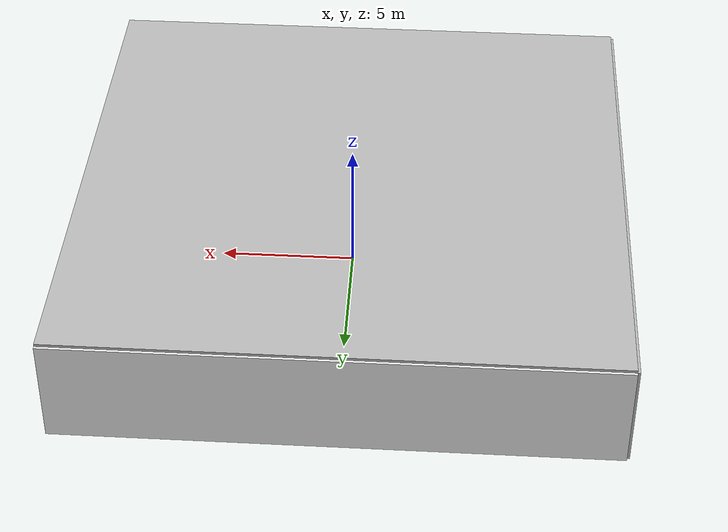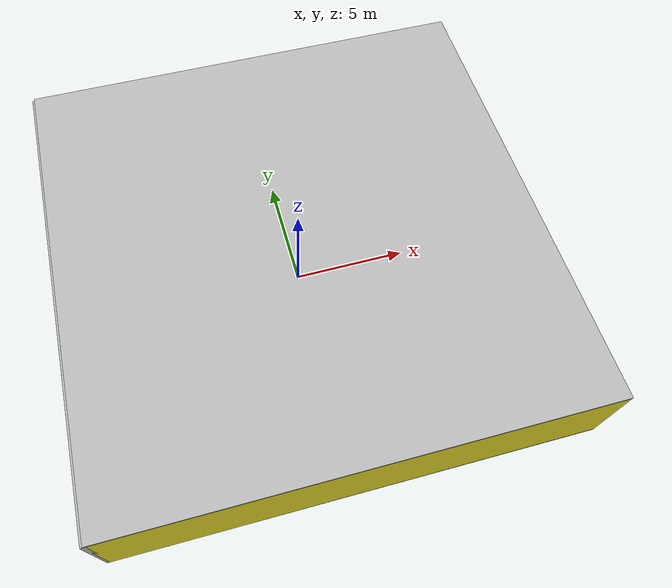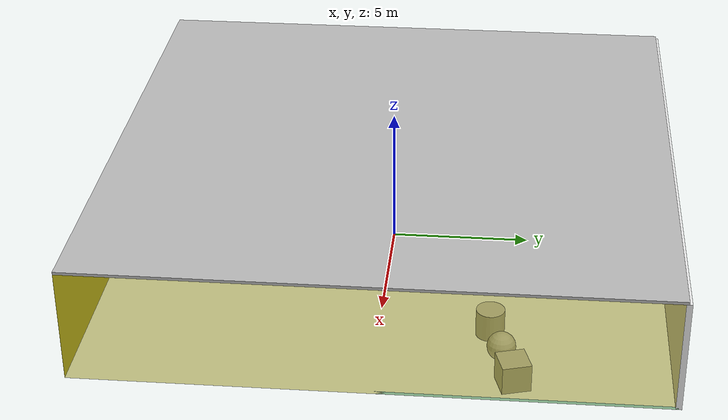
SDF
<sdf version="1.4">
 <world name="default">
  <physics type="ode">
   <max_step_size>0.001</max_step_size>
   <real_time_factor>1</real_time_factor>
   <real_time_update_rate>1000</real_time_update_rate>
   <gravity>0 0 -9.8</gravity>
  </physics>
  <scene><ambient>0.4 0.4 0.4 1</ambient><background>0.7 0.7 0.7 1</background><shadows>1</shadows></scene>
  <model name="Surrounding">
   <static>1</static>
   <link name="Ceiling">
    <collision name="Ceiling_Collision"><geometry><box><size>20 20 0.1</size></box></geometry></collision>
    <visual name="Ceiling_Visual">
     <geometry><box><size>20 20 0.1</size></box></geometry>
     <material>
      <script><uri>file://media/materials/scripts/gazebo.material</uri><name>Gazebo/PioneerBody</name></script>
     </material>
    </visual>
    <pose>0 0 4.05 0 0 0</pose>
   </link>
   <link name="Wall_South">
    <collision name="Wall_South_Collision">
     <geometry><box><size>20 0 4</size></box></geometry>
     <pose>0 0 2 0 -0 0</pose>
    </collision>
    <visual name="Wall_South_Visual">
     <pose>0 0 2 0 -0 0</pose>
     <geometry><box><size>20 0 4</size></box></geometry>
     <material>
      <script><uri>file://media/materials/scripts/gazebo.material</uri><name>Gazebo/Yellow</name></script>
     </material>
    </visual>
    <velocity_decay><linear>0</linear><angular>0</angular></velocity_decay>
    <pose>0 -10 0 0 -0 0</pose>
   </link>
   <link name="Wall_East">
    <collision name="Wall_21_Collision">
     <geometry><box><size>20 0 4</size></box></geometry>
     <pose>0 0 2 0 -0 0</pose>
    </collision>
    <visual name="Wall_21_Visual">
     <pose>0 0 2 0 -0 0</pose>
     <geometry><box><size>20 0 4</size></box></geometry>
     <material>
      <script>
       <uri>file://media/materials/scripts/gazebo.material</uri>
       <name>Gazebo/YellowTransparent</name>
      </script>
     </material>
    </visual>
    <velocity_decay><linear>0</linear><angular>0</angular></velocity_decay>
    <pose>10 0 0 0 -0 1.5708</pose>
   </link>
   <link name="Wall_North">
    <collision name="Wall_22_Collision">
     <geometry><box><size>20 0.2 4</size></box></geometry>
     <pose>0 0 2 0 -0 0</pose>
    </collision>
    <visual name="Wall_22_Visual">
     <pose>0 0 2 0 -0 0</pose>
     <geometry><box><size>20 0.2 4</size></box></geometry>
     <material>
      <script><uri>file://media/materials/scripts/gazebo.material</uri><name>Gazebo/WhiteGlow</name></script>
     </material>
    </visual>
    <velocity_decay><linear>0</linear><angular>0</angular></velocity_decay>
    <pose>0 10 0 0 -0 0</pose>
   </link>
   <link name="Wall_West">
    <collision name="Wall_23_Collision">
     <geometry><box><size>20 0.2 4</size></box></geometry>
     <pose>0 0 2 0 -0 0</pose>
    </collision>
    <visual name="Wall_23_Visual">
     <pose>0 0 2 0 -0 0</pose>
     <geometry><box><size>20 0.2 4</size></box></geometry>
     <material>
      <script><uri>file://media/materials/scripts/gazebo.material</uri><name>Gazebo/Pioneer2Body</name></script>
     </material>
    </visual>
    <velocity_decay><linear>0</linear><angular>0</angular></velocity_decay>
    <pose>-10 0 0 0 0 -1.5708</pose>
   </link>
   <link name="Ground_link">
    <collision name="collision">
     <pose>0 0 .05 0 -0 0</pose>
     <geometry><box><size>20 20 0.1</size></box></geometry>
    </collision>
    <visual name="visual">
     <pose>0 0 .05 0 -0 0</pose>
     <geometry><box><size>20 20 0.1</size></box></geometry>
     <material>
      <script><uri>file://media/materials/scripts/gazebo.material</uri><name>Gazebo/GreenTransparent</name></script>
     </material>
    </visual>
   </link>
   <static>1</static>
  </model>
  <spherical_coordinates>
   <surface_model>EARTH_WGS84</surface_model>
   <latitude_deg>0</latitude_deg>
   <longitude_deg>0</longitude_deg>
   <elevation>0</elevation>
   <heading_deg>0</heading_deg>
  </spherical_coordinates>
  <light name="lightball_0" type="diffuse">
   <diffuse>0.8 0.8 0.8 1</diffuse>
   <specular>0.2 0.2 0.2 1</specular>
   <attenuation>
    <range>100</range>
    <constant>0.7</constant>
    <linear>0.01</linear>
    <quadratic>0.001</quadratic>
   </attenuation>
   <direction>-0.5 0.1 -0.9</direction>
   <pose>-3.64839081964 -1.11069009436 1.60201041013 0 0 0</pose>
  </light>
  <light name="lightball_1" type="diffuse">
   <diffuse>0.8 0.8 0.8 1</diffuse>
   <specular>0.2 0.2 0.2 1</specular>
   <attenuation>
    <range>100</range>
    <constant>0.7</constant>
    <linear>0.01</linear>
    <quadratic>0.001</quadratic>
   </attenuation>
   <direction>-0.5 0.1 -0.9</direction>
   <pose>4.7549733471 2.05702701334 2.45813655723 0 0 0</pose>
  </light>
  <light name="lightball_2" type="diffuse">
   <diffuse>0.8 0.8 0.8 1</diffuse>
   <specular>0.2 0.2 0.2 1</specular>
   <attenuation>
    <range>100</range>
    <constant>0.7</constant>
    <linear>0.01</linear>
    <quadratic>0.001</quadratic>
   </attenuation>
   <direction>-0.5 0.1 -0.9</direction>
   <pose>7.19353525786 3.37176669719 1.53668600519 0 0 0</pose>
  </light>
  <light name="lightball_3" type="diffuse">
   <diffuse>0.8 0.8 0.8 1</diffuse>
   <specular>0.2 0.2 0.2 1</specular>
   <attenuation>
    <range>100</range>
    <constant>0.7</constant>
    <linear>0.01</linear>
    <quadratic>0.001</quadratic>
   </attenuation>
   <direction>-0.5 0.1 -0.9</direction>
   <pose>-9.95820447326 -9.49397639625 2.24417025277 0 0 0</pose>
  </light>
  <light name="lightball_4" type="diffuse">
   <diffuse>0.8 0.8 0.8 1</diffuse>
   <specular>0.2 0.2 0.2 1</specular>
   <attenuation>
    <range>100</range>
    <constant>0.7</constant>
    <linear>0.01</linear>
    <quadratic>0.001</quadratic>
   </attenuation>
   <direction>-0.5 0.1 -0.9</direction>
   <pose>-2.30081844017 8.6356260243 2.13695447136 0 0 0</pose>
  </light>
  <light name="lightball_5" type="diffuse">
   <diffuse>0.8 0.8 0.8 1</diffuse>
   <specular>0.2 0.2 0.2 1</specular>
   <attenuation>
    <range>100</range>
    <constant>0.7</constant>
    <linear>0.01</linear>
    <quadratic>0.001</quadratic>
   </attenuation>
   <direction>-0.5 0.1 -0.9</direction>
   <pose>-8.96345986418 -1.34699779098 2.98836470988 0 0 0</pose>
  </light>
  <light name="lightball_6" type="diffuse">
   <diffuse>0.8 0.8 0.8 1</diffuse>
   <specular>0.2 0.2 0.2 1</specular>
   <attenuation>
    <range>100</range>
    <constant>0.7</constant>
    <linear>0.01</linear>
    <quadratic>0.001</quadratic>
   </attenuation>
   <direction>-0.5 0.1 -0.9</direction>
   <pose>-0.176841519388 7.69932505534 1.62184181663 0 0 0</pose>
  </light>
  <light name="lightball_7" type="diffuse">
   <diffuse>0.8 0.8 0.8 1</diffuse>
   <specular>0.2 0.2 0.2 1</specular>
   <attenuation>
    <range>100</range>
    <constant>0.7</constant>
    <linear>0.01</linear>
    <quadratic>0.001</quadratic>
   </attenuation>
   <direction>-0.5 0.1 -0.9</direction>
   <pose>4.7649763443 2.50354277004 1.22643420837 0 0 0</pose>
  </light>
  <light name="lightball_8" type="diffuse">
   <diffuse>0.8 0.8 0.8 1</diffuse>
   <specular>0.2 0.2 0.2 1</specular>
   <attenuation>
    <range>100</range>
    <constant>0.7</constant>
    <linear>0.01</linear>
    <quadratic>0.001</quadratic>
   </attenuation>
   <direction>-0.5 0.1 -0.9</direction>
   <pose>4.46272656698 5.72822735987 2.25495445933 0 0 0</pose>
  </light>
  <light name="lightball_9" type="diffuse">
   <diffuse>0.8 0.8 0.8 1</diffuse>
   <specular>0.2 0.2 0.2 1</specular>
   <attenuation>
    <range>100</range>
    <constant>0.7</constant>
    <linear>0.01</linear>
    <quadratic>0.001</quadratic>
   </attenuation>
   <direction>-0.5 0.1 -0.9</direction>
   <pose>-0.16371849921 -3.52352115682 2.0235207646 0 0 0</pose>
  </light>
  <light name="lightball_10" type="diffuse">
   <diffuse>0.8 0.8 0.8 1</diffuse>
   <specular>0.2 0.2 0.2 1</specular>
   <attenuation>
    <range>100</range>
    <constant>0.7</constant>
    <linear>0.01</linear>
    <quadratic>0.001</quadratic>
   </attenuation>
   <direction>-0.5 0.1 -0.9</direction>
   <pose>-4.42086426883 -6.25741804177 3.35145160961 0 0 0</pose>
  </light>
  <light name="lightball_11" type="diffuse">
   <diffuse>0.8 0.8 0.8 1</diffuse>
   <specular>0.2 0.2 0.2 1</specular>
   <attenuation>
    <range>100</range>
    <constant>0.7</constant>
    <linear>0.01</linear>
    <quadratic>0.001</quadratic>
   </attenuation>
   <direction>-0.5 0.1 -0.9</direction>
   <pose>8.23087503067 2.50887200027 2.49830537682 0 0 0</pose>
  </light>
  <light name="lightball_12" type="diffuse">
   <diffuse>0.8 0.8 0.8 1</diffuse>
   <specular>0.2 0.2 0.2 1</specular>
   <attenuation>
    <range>100</range>
    <constant>0.7</constant>
    <linear>0.01</linear>
    <quadratic>0.001</quadratic>
   </attenuation>
   <direction>-0.5 0.1 -0.9</direction>
   <pose>3.31036939963 -5.53128946258 2.82502775888 0 0 0</pose>
  </light>
  <light name="lightball_13" type="diffuse">
   <diffuse>0.8 0.8 0.8 1</diffuse>
   <specular>0.2 0.2 0.2 1</specular>
   <attenuation>
    <range>100</range>
    <constant>0.7</constant>
    <linear>0.01</linear>
    <quadratic>0.001</quadratic>
   </attenuation>
   <direction>-0.5 0.1 -0.9</direction>
   <pose>-1.67599626501 -3.32503315843 0.887817991413 0 0 0</pose>
  </light>
  <include><uri>model://table</uri><pose>-7.70880783728 -5.22840733185 0 0 0 2.14799702643</pose></include>
  <include><uri>model://cabinet</uri><pose>-8.18315844554 7.73159853351 0 0 0 0.337358071186</pose></include>
  <include><uri>model://cabinet</uri><pose>-4.00677552864 -6.87689294056 0 0 0 0.784279438685</pose></include>
  <include>
   <uri>model://robocup_3Dsim_goal</uri>
   <pose>-4.68254892102 8.17464995725 0 0 0 2.86636765037</pose>
  </include>
  <include><uri>model://table</uri><pose>-1.72591326876 -5.14222237036 0 0 0 2.32289787138</pose></include>
  <include><uri>model://cabinet</uri><pose>-1.15364359454 7.26584802847 0 0 0 0.0971540398562</pose></include>
  <include>
   <uri>model://robocup_3Dsim_goal</uri>
   <pose>2.22614057008 7.10784105876 0 0 0 0.351400691191</pose>
  </include>
  <include>
   <uri>model://textured_shapes</uri>
   <pose>6.95015405364 4.24755560593 0 0 0 1.8585872369</pose>
  </include>
 </world>
</sdf>

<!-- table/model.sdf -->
<sdf version="1.5">
  <model name="table">
    <static>true</static>
    <link name="link">
      <collision name="surface">
        <pose>0 0 1.0 0 0 0</pose>
        <geometry>
          <box>
            <size>1.5 0.8 0.03</size>
          </box>
        </geometry>
        <surface>
          <friction>
            <ode>
              <mu>0.6</mu>
              <mu2>0.6</mu2>
            </ode>
          </friction>
        </surface>
      </collision>
      <visual name="visual1">
        <pose>0 0 1.0 0 0 0</pose>
        <geometry>
          <box>
            <size>1.5 0.8 0.03</size>
          </box>
        </geometry>
        <material>
          <script>
            <uri>model://media/materials/scripts/gazebo.material</uri>
            <name>Gazebo/Wood</name>
          </script>
        </material>
      </visual>
      <collision name="front_left_leg">
        <pose>0.68 0.38 0.5 0 0 0</pose>
        <geometry>
          <cylinder>
            <radius>0.02</radius>
            <length>1.0</length>
          </cylinder>
        </geometry>
      </collision>
      <visual name="front_left_leg">
        <pose>0.68 0.38 0.5 0 0 0</pose>
        <geometry>
          <cylinder>
            <radius>0.02</radius>
            <length>1.0</length>
          </cylinder>
        </geometry>
        <material>
          <script>
            <uri>model://media/materials/scripts/gazebo.material</uri>
            <name>Gazebo/Grey</name>
          </script>
        </material>
      </visual>
      <collision name="front_right_leg">
        <pose>0.68 -0.38 0.5 0 0 0</pose>
        <geometry>
          <cylinder>
            <radius>0.02</radius>
            <length>1.0</length>
          </cylinder>
        </geometry>
      </collision>
      <visual name="front_right_leg">
        <pose>0.68 -0.38 0.5 0 0 0</pose>
        <geometry>
          <cylinder>
            <radius>0.02</radius>
            <length>1.0</length>
          </cylinder>
        </geometry>
        <material>
          <script>
            <uri>model://media/materials/scripts/gazebo.material</uri>
            <name>Gazebo/Grey</name>
          </script>
        </material>
      </visual>
      <collision name="back_right_leg">
        <pose>-0.68 -0.38 0.5 0 0 0</pose>
        <geometry>
          <cylinder>
            <radius>0.02</radius>
            <length>1.0</length>
          </cylinder>
        </geometry>
      </collision>
      <visual name="back_right_leg">
        <pose>-0.68 -0.38 0.5 0 0 0</pose>
        <geometry>
          <cylinder>
            <radius>0.02</radius>
            <length>1.0</length>
          </cylinder>
        </geometry>
        <material>
          <script>
            <uri>model://media/materials/scripts/gazebo.material</uri>
            <name>Gazebo/Grey</name>
          </script>
        </material>
      </visual>
      <collision name="back_left_leg">
        <pose>-0.68 0.38 0.5 0 0 0</pose>
        <geometry>
          <cylinder>
            <radius>0.02</radius>
            <length>1.0</length>
          </cylinder>
        </geometry>
      </collision>
      <visual name="back_left_leg">
        <pose>-0.68 0.38 0.5 0 0 0</pose>
        <geometry>
          <cylinder>
            <radius>0.02</radius>
            <length>1.0</length>
          </cylinder>
        </geometry>
        <material>
          <script>
            <uri>model://media/materials/scripts/gazebo.material</uri>
            <name>Gazebo/Grey</name>
          </script>
        </material>
      </visual>
    </link>
  </model>
</sdf>

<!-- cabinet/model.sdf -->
<sdf version="1.5">
  <model name="cabinet">
    <static>true</static>
    <link name="cabinet_bottom_plate">
      <inertial>
        <pose>0 0 -1 0 0 0</pose>
        <inertia>
          <ixx>2.050000</ixx>
          <ixy>0</ixy>
          <ixz>0</ixz>
          <iyy>2.050000</iyy>
          <iyz>0</iyz>
          <izz>2.050000</izz>
        </inertia>
        <mass>25.000000</mass>
      </inertial>
      <collision name="cabinet_bottom_plate_geom">
        <pose>0 0 0.010000 0 0 0</pose>
        <geometry>
          <box>
            <size>0.450000 0.450000 0.020000</size>
          </box>
        </geometry>
      </collision>
      <visual name="cabinet_bottom_plate_geom_visual">
        <pose>0 0 0.010000 0 0 0</pose>
        <geometry>
          <box>
            <size>0.450000 0.450000 0.020000</size>
          </box>
        </geometry>
        <material>
          <script>
            <uri>model://media/materials/scripts/gazebo.material</uri>
            <name>Gazebo/Wood</name>
          </script>
        </material>
      </visual>
      <collision name="cabinet_bottom_plate_geom_cabinet_back_plate">
        <pose>0.235000 0 0.510000 0 0 0</pose>
        <geometry>
          <box>
            <size>0.020000 0.450000 1.020000</size>
          </box>
        </geometry>
      </collision>
      <visual name="cabinet_bottom_plate_geom_cabinet_back_plate_visual">
        <pose>0.235000 0 0.510000 0 0 0</pose>
        <geometry>
          <box>
            <size>0.020000 0.450000 1.020000</size>
          </box>
        </geometry>
        <material>
          <script>
            <uri>model://media/materials/scripts/gazebo.material</uri>
            <name>Gazebo/Wood</name>
          </script>
        </material>
      </visual>
      <collision name="cabinet_bottom_plate_geom_cabinet_left_plate">
        <pose>0 0.235000 0.510000 0 0 0</pose>
        <geometry>
          <box>
            <size>0.450000 0.020000 1.020000</size>
          </box>
        </geometry>
      </collision>
      <visual name="cabinet_bottom_plate_geom_cabinet_left_plate_visual">
        <pose>0 0.235000 0.510000 0 0 0</pose>
        <geometry>
          <box>
            <size>0.450000 0.020000 1.020000</size>
          </box>
        </geometry>
        <material>
          <script>
            <uri>model://media/materials/scripts/gazebo.material</uri>
            <name>Gazebo/Wood</name>
          </script>
        </material>
      </visual>
      <collision name="cabinet_bottom_plate_geom_cabinet_middle_plate">
        <pose>0 0 0.510000 0 0 0</pose>
        <geometry>
          <box>
            <size>0.450000 0.450000 0.020000</size>
          </box>
        </geometry>
      </collision>
      <visual name="cabinet_bottom_plate_geom_cabinet_middle_plate_visual">
        <pose>0 0 0.510000 0 0 0</pose>
        <geometry>
          <box>
            <size>0.450000 0.450000 0.020000</size>
          </box>
        </geometry>
        <material>
          <script>
            <uri>model://media/materials/scripts/gazebo.material</uri>
            <name>Gazebo/Wood</name>
          </script>
        </material>
      </visual>
      <collision name="cabinet_bottom_plate_geom_cabinet_right_plate">
        <pose>0 -0.235000 0.510000 0 0 0</pose>
        <geometry>
          <box>
            <size>0.450000 0.020000 1.020000</size>
          </box>
        </geometry>
      </collision>
      <visual name="cabinet_bottom_plate_geom_cabinet_right_plate_visual">
        <pose>0 -0.235000 0.510000 0 0 0</pose>
        <geometry>
          <box>
            <size>0.450000 0.020000 1.020000</size>
          </box>
        </geometry>
        <material>
          <script>
            <uri>model://media/materials/scripts/gazebo.material</uri>
            <name>Gazebo/Wood</name>
          </script>
        </material>
      </visual>
      <collision name="cabinet_bottom_plate_geom_cabinet_top_plate">
        <pose>0 0 1.010000 0 0 0</pose>
        <geometry>
          <box>
            <size>0.450000 0.450000 0.020000</size>
          </box>
        </geometry>
      </collision>
      <visual name="cabinet_bottom_plate_geom_cabinet_top_plate_visual">
        <pose>0 0 1.010000 0 0 0</pose>
        <geometry>
          <box>
            <size>0.450000 0.450000 0.020000</size>
          </box>
        </geometry>
        <material>
          <script>
            <uri>model://media/materials/scripts/gazebo.material</uri>
            <name>Gazebo/Wood</name>
          </script>
        </material>
      </visual>
    </link>
  </model>
</sdf>

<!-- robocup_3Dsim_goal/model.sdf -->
<sdf version="1.5">
  <model name="robocup_3d_goal">
    <static>true</static>
    <link name="left_post">
      <pose>0 1.05 0.45 0 0 0</pose>
      <collision name="collision">
        <geometry>
          <cylinder>
            <radius>0.05</radius>
            <length>0.9</length>
          </cylinder>
        </geometry>
      </collision>
      <visual name="visual">
        <geometry>
          <cylinder>
            <radius>0.05</radius>
            <length>0.9</length>
          </cylinder>
        </geometry>
        <material>
          <script>
            <uri>file://media/materials/scripts/gazebo.material</uri>
            <name>Gazebo/ZincYellow</name>
          </script>
        </material>
      </visual>
    </link>
    <link name="left_support_horiz_lower">
      <pose>0.30 1.05 0.01 0 0 0</pose>
      <collision name="collision">
        <geometry>
          <box>
            <size>0.50 0.02 0.02</size>
          </box>
        </geometry>
      </collision>
      <visual name="visual">
        <geometry>
          <box>
            <size>0.50 0.02 0.02</size>
          </box>
        </geometry>
        <material>
          <script>
            <uri>file://media/materials/scripts/gazebo.material</uri>
            <name>Gazebo/White</name>
          </script>
        </material>
      </visual>
    </link>
    <link name="left_support_horiz_upper">
      <pose>0.30 1.05 0.79 0 0 0</pose>
      <collision name="collision">
        <geometry>
          <box>
            <size>0.50 0.02 0.02</size>
          </box>
        </geometry>
      </collision>
      <visual name="visual">
        <geometry>
          <box>
            <size>0.50 0.02 0.02</size>
          </box>
        </geometry>
        <material>
          <script>
            <uri>file://media/materials/scripts/gazebo.material</uri>
            <name>Gazebo/White</name>
          </script>
        </material>
      </visual>
    </link>
    <link name="left_support_vertical">
      <pose>0.56 1.05 0.4 0 1.5708 0</pose>
      <collision name="collision">
        <geometry>
          <box>
            <size>0.80 0.02 0.02</size>
          </box>
        </geometry>
      </collision>
      <visual name="visual">
        <geometry>
          <box>
            <size>0.80 0.02 0.02</size>
          </box>
        </geometry>
        <material>
          <script>
            <uri>file://media/materials/scripts/gazebo.material</uri>
            <name>Gazebo/White</name>
          </script>
        </material>
      </visual>
    </link>
    <link name="right_support_horiz_lower">
      <pose>0.30 -1.05 0.01 0 0 0</pose>
      <collision name="collision">
        <geometry>
          <box>
            <size>0.50 0.02 0.02</size>
          </box>
        </geometry>
      </collision>
      <visual name="visual">
        <geometry>
          <box>
            <size>0.50 0.02 0.02</size>
          </box>
        </geometry>
        <material>
          <script>
            <uri>file://media/materials/scripts/gazebo.material</uri>
            <name>Gazebo/White</name>
          </script>
        </material>
      </visual>
    </link>
    <link name="right_support_horiz_upper">
      <pose>0.30 -1.05 0.79 0 0 0</pose>
      <collision name="collision">
        <geometry>
          <box>
            <size>0.50 0.02 0.02</size>
          </box>
        </geometry>
      </collision>
      <visual name="visual">
        <geometry>
          <box>
            <size>0.50 0.02 0.02</size>
          </box>
        </geometry>
        <material>
          <script>
            <uri>file://media/materials/scripts/gazebo.material</uri>
            <name>Gazebo/White</name>
          </script>
        </material>
      </visual>
    </link>
    <link name="right_support_vertical">
      <pose>0.56 -1.05 0.4 0 1.5708 0</pose>
      <collision name="collision">
        <geometry>
          <box>
            <size>0.80 0.02 0.02</size>
          </box>
        </geometry>
      </collision>
      <visual name="visual">
        <geometry>
          <box>
            <size>0.80 0.02 0.02</size>
          </box>
        </geometry>
        <material>
          <script>
            <uri>file://media/materials/scripts/gazebo.material</uri>
            <name>Gazebo/White</name>
          </script>
        </material>
      </visual>
    </link>
    <link name="center_support_horiz_lower">
      <pose>0.56 0 0.01 0 1.5708 0</pose>
      <collision name="collision">
        <geometry>
          <box>
            <size>0.02 2.08 0.02</size>
          </box>
        </geometry>
      </collision>
      <visual name="visual">
        <geometry>
          <box>
            <size>0.02 2.08 0.02</size>
          </box>
        </geometry>
        <material>
          <script>
            <uri>file://media/materials/scripts/gazebo.material</uri>
            <name>Gazebo/White</name>
          </script>
        </material>
      </visual>
    </link>
    <link name="center_support_horiz_upper">
      <pose>0.56 0 0.79 0 1.5708 0</pose>
      <collision name="collision">
        <geometry>
          <box>
            <size>0.02 2.08 0.02</size>
          </box>
        </geometry>
      </collision>
      <visual name="visual">
        <geometry>
          <box>
            <size>0.02 2.08 0.02</size>
          </box>
        </geometry>
        <material>
          <script>
            <uri>file://media/materials/scripts/gazebo.material</uri>
            <name>Gazebo/White</name>
          </script>
        </material>
      </visual>
    </link>
    <link name="right_post">
      <pose>0 -1.05 0.45 0 0 0</pose>
      <collision name="collision">
        <geometry>
          <cylinder>
            <radius>0.05</radius>
            <length>0.9</length>
          </cylinder>
        </geometry>
      </collision>
      <visual name="visual">
        <geometry>
          <cylinder>
            <radius>0.05</radius>
            <length>0.9</length>
          </cylinder>
        </geometry>
        <material>
          <script>
            <uri>file://media/materials/scripts/gazebo.material</uri>
            <name>Gazebo/ZincYellow</name>
          </script>
        </material>
      </visual>
    </link>
    <link name="crossbar">
      <pose>0 0 0.85 1.57 1.57 0</pose>
      <collision name="collision">
        <geometry>
          <cylinder>
            <radius>0.05</radius>
            <length>2.0</length>
          </cylinder>
        </geometry>
      </collision>
      <visual name="visual">
        <geometry>
          <cylinder>
            <radius>0.05</radius>
            <length>2.0</length>
          </cylinder>
        </geometry>
        <material>
          <script>
            <uri>file://media/materials/scripts/gazebo.material</uri>
            <name>Gazebo/ZincYellow</name>
          </script>
        </material>
      </visual>
    </link>
    <link name="center_net">
      <pose>0.56 0 0.40 0 0 0</pose>
      <collision name="collision">
        <geometry>
          <box>
            <size>0.01 2.1 0.80</size>
          </box>
        </geometry>
      </collision>
      <visual name="visual">
        <geometry>
          <box>
            <size>0.01 2.1 0.80</size>
          </box>
        </geometry>
        <material>
          <script>
            <uri>model://../model_source/models/robocup09_spl_field/materials/scripts/</uri>
            <uri>model://../model_source/models/robocup09_spl_field/materials/textures/</uri>
            <name>RoboCup/Net</name>
          </script>
        </material>
      </visual>
    </link>
    <link name="left_net">
      <pose>0.30 1.05 0.40 0 0 0</pose>
      <collision name="collision">
        <geometry>
          <box>
            <size>0.50 0.01 0.76</size>
          </box>
        </geometry>
      </collision>
      <visual name="visual">
        <geometry>
          <box>
            <size>0.50 0.01 0.76</size>
          </box>
        </geometry>
        <material>
          <script>
            <uri>model://../model_source/models/robocup09_spl_field/materials/scripts/</uri>
            <uri>model://../model_source/models/robocup09_spl_field/materials/textures/</uri>
            <name>RoboCup/Net</name>
          </script>
        </material>
      </visual>
    </link>
    <link name="right_net">
      <pose>0.30 -1.05 0.40 0 0 0</pose>
      <collision name="collision">
        <geometry>
          <box>
            <size>0.50 0.01 0.76</size>
          </box>
        </geometry>
      </collision>
      <visual name="visual">
        <geometry>
          <box>
            <size>0.50 0.01 0.76</size>
          </box>
        </geometry>
        <material>
          <script>
            <uri>model://../model_source/models/robocup09_spl_field/materials/scripts/</uri>
            <uri>model://../model_source/models/robocup09_spl_field/materials/textures/</uri>
            <name>RoboCup/Net</name>
          </script>
        </material>
      </visual>
    </link>
  </model>
</sdf>

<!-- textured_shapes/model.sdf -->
<sdf version="1.6">
  <model name="textured_shapes">
    <pose>0 0 0.5 0 0 0</pose>
    <link name="box">
      <pose>0 -1.5 0 0 0 0</pose>
      <collision name="collision">
        <geometry>
          <box>
            <size>1 1 1</size>
          </box>
        </geometry>
      </collision>
      <visual name="visual">
        <geometry>
          <box>
            <size>1 1 1</size>
          </box>
        </geometry>
        <material>
          <script>
            <uri>model://../model_source/models/textured_shapes/materials/scripts</uri>
            <uri>model://../model_source/models/textured_shapes/materials/textures</uri>
            <name>TexturedShape/Squares</name>
          </script>
        </material>
      </visual>
    </link>
    <link name="sphere">
      <collision name="collision">
        <geometry>
          <sphere>
            <radius>0.5</radius>
          </sphere>
        </geometry>
      </collision>
      <visual name="visual">
        <geometry>
          <sphere>
            <radius>0.5</radius>
          </sphere>
        </geometry>
        <material>
          <script>
            <uri>model://../model_source/models/textured_shapes/materials/scripts</uri>
            <uri>model://../model_source/models/textured_shapes/materials/textures</uri>
            <name>TexturedShape/Squares</name>
          </script>
        </material>
      </visual>
    </link>
    <link name="cylinder">
      <pose>0 1.5 0 0 0 0</pose>
      <collision name="collision">
        <geometry>
          <cylinder>
            <radius>0.5</radius>
            <length>1</length>
          </cylinder>
        </geometry>
      </collision>
      <visual name="visual">
        <geometry>
          <cylinder>
            <radius>0.5</radius>
            <length>1</length>
          </cylinder>
        </geometry>
        <material>
          <script>
            <uri>model://../model_source/models/textured_shapes/materials/scripts</uri>
            <uri>model://../model_source/models/textured_shapes/materials/textures</uri>
            <name>TexturedShape/Squares</name>
          </script>
        </material>
      </visual>
    </link>
  </model>
</sdf>
